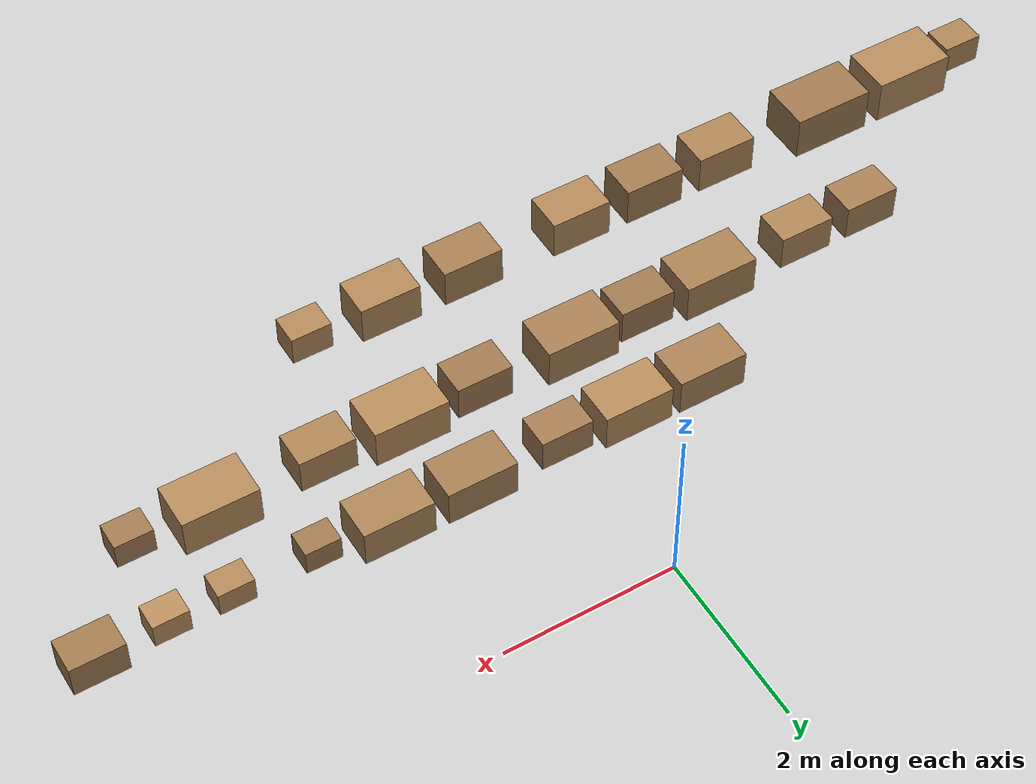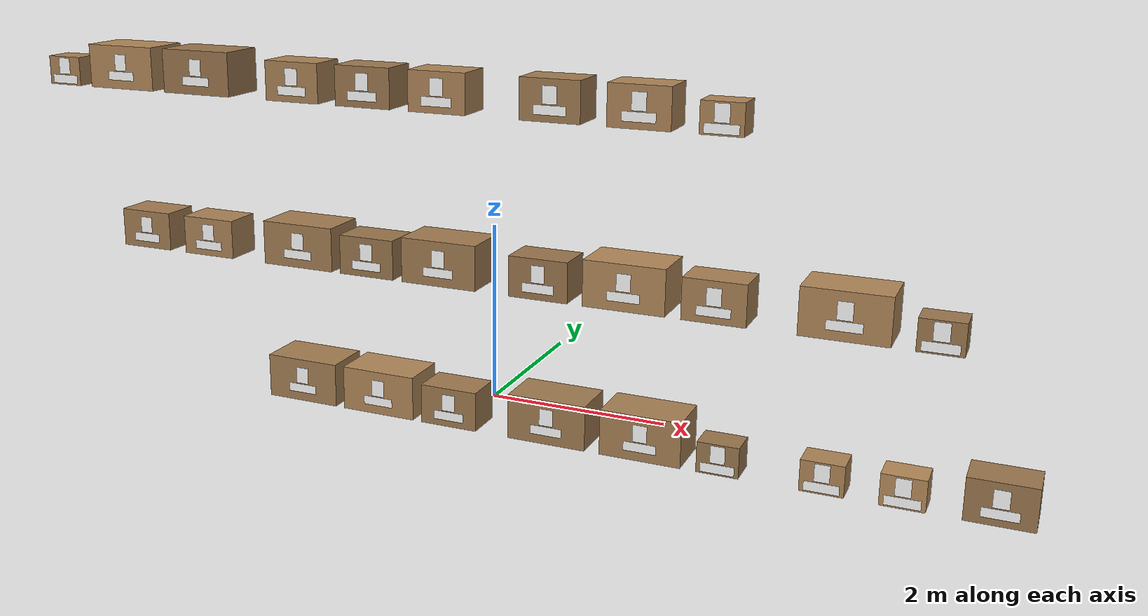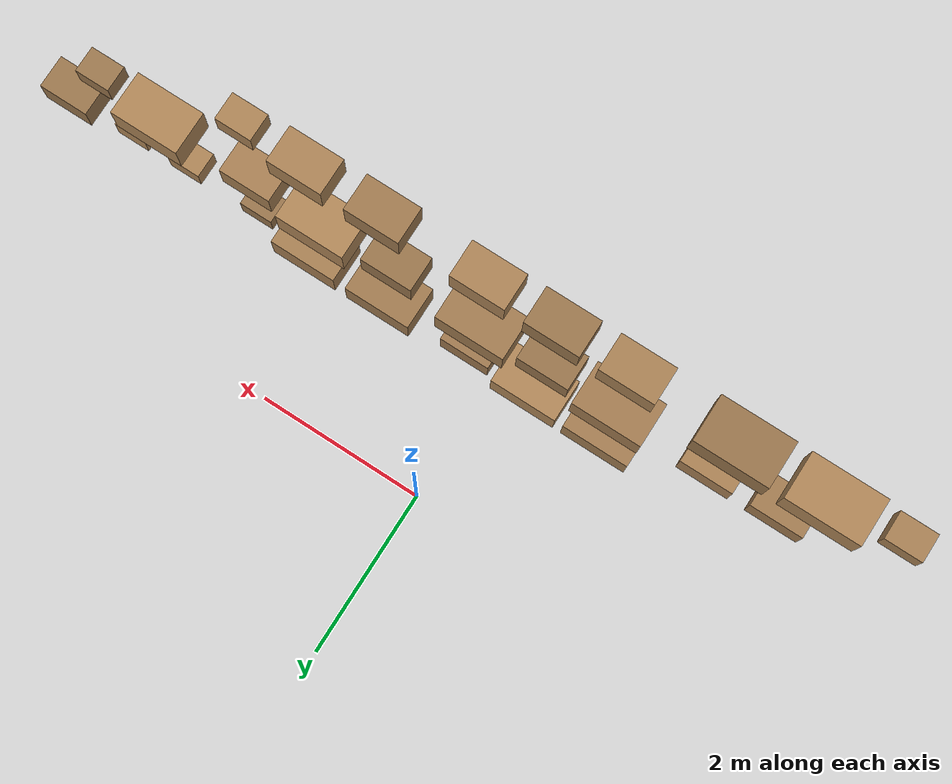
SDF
<sdf version="1.9">
 <world name="warehouse">
  <model name="inventory">
   <static>true</static>
   <link name="box_B_03_2_1">
    <visual name="body">
     <pose>-3.25 -1.68 2.05 0 0 0</pose>
     <geometry><box><size>0.6 0.4 0.4</size></box></geometry>
     <material>
      <ambient>0.319644 0.244433 0.159822 1</ambient>
      <diffuse>0.639288 0.488867 0.319644 1</diffuse>
      <specular>0.05 0.05 0.05 1</specular>
      <pbr><metal><metalness>0.0</metalness><roughness>0.9</roughness></metal></pbr>
     </material>
    </visual>
    <collision name="body_c">
     <pose>-3.25 -1.68 2.05 0 0 0</pose>
     <geometry><box><size>0.6 0.4 0.4</size></box></geometry>
    </collision>
    <visual name="label">
     <pose>-3.25 -1.884 2.1 1.5708 0 0</pose>
     <geometry>
      <mesh><uri>model://warehouse_assets/meshes/label_quad.obj</uri><scale>0.14 0.17 1</scale></mesh>
     </geometry>
     <material>
      <ambient>1 1 1 1</ambient>
      <diffuse>1 1 1 1</diffuse>
      <specular>0 0 0 1</specular>
      <pbr>
       <metal>
        <albedo_map>model://warehouse_assets/materials/textures/box_B0321.png</albedo_map>
        <metalness>0.0</metalness>
        <roughness>1.0</roughness>
       </metal>
      </pbr>
     </material>
    </visual>
    <visual name="placard">
     <pose>-3.25 -1.884 1.96 1.5708 0 0</pose>
     <geometry>
      <mesh><uri>model://warehouse_assets/meshes/label_quad.obj</uri><scale>0.32 0.09 1</scale></mesh>
     </geometry>
     <material>
      <ambient>1 1 1 1</ambient>
      <diffuse>1 1 1 1</diffuse>
      <specular>0 0 0 1</specular>
      <pbr>
       <metal>
        <albedo_map>model://warehouse_assets/materials/textures/placard_B0321.png</albedo_map>
        <metalness>0.0</metalness>
        <roughness>1.0</roughness>
       </metal>
      </pbr>
     </material>
    </visual>
   </link>
   <link name="box_B_03_2_2">
    <visual name="body">
     <pose>-2.45 -1.68 2.05 0 0 0</pose>
     <geometry><box><size>0.6 0.4 0.4</size></box></geometry>
     <material>
      <ambient>0.333896 0.255332 0.166948 1</ambient>
      <diffuse>0.667791 0.510664 0.333896 1</diffuse>
      <specular>0.05 0.05 0.05 1</specular>
      <pbr><metal><metalness>0.0</metalness><roughness>0.9</roughness></metal></pbr>
     </material>
    </visual>
    <collision name="body_c">
     <pose>-2.45 -1.68 2.05 0 0 0</pose>
     <geometry><box><size>0.6 0.4 0.4</size></box></geometry>
    </collision>
    <visual name="label">
     <pose>-2.45 -1.884 2.1 1.5708 0 0</pose>
     <geometry>
      <mesh><uri>model://warehouse_assets/meshes/label_quad.obj</uri><scale>0.14 0.17 1</scale></mesh>
     </geometry>
     <material>
      <ambient>1 1 1 1</ambient>
      <diffuse>1 1 1 1</diffuse>
      <specular>0 0 0 1</specular>
      <pbr>
       <metal>
        <albedo_map>model://warehouse_assets/materials/textures/box_B0322.png</albedo_map>
        <metalness>0.0</metalness>
        <roughness>1.0</roughness>
       </metal>
      </pbr>
     </material>
    </visual>
    <visual name="placard">
     <pose>-2.45 -1.884 1.96 1.5708 0 0</pose>
     <geometry>
      <mesh><uri>model://warehouse_assets/meshes/label_quad.obj</uri><scale>0.32 0.09 1</scale></mesh>
     </geometry>
     <material>
      <ambient>1 1 1 1</ambient>
      <diffuse>1 1 1 1</diffuse>
      <specular>0 0 0 1</specular>
      <pbr>
       <metal>
        <albedo_map>model://warehouse_assets/materials/textures/placard_B0322.png</albedo_map>
        <metalness>0.0</metalness>
        <roughness>1.0</roughness>
       </metal>
      </pbr>
     </material>
    </visual>
   </link>
   <link name="box_B_03_3_0">
    <visual name="body">
     <pose>-4.2 -1.73 3.7 0 0 0</pose>
     <geometry><box><size>0.4 0.3 0.3</size></box></geometry>
     <material>
      <ambient>0.330717 0.252901 0.165358 1</ambient>
      <diffuse>0.661434 0.505802 0.330717 1</diffuse>
      <specular>0.05 0.05 0.05 1</specular>
      <pbr><metal><metalness>0.0</metalness><roughness>0.9</roughness></metal></pbr>
     </material>
    </visual>
    <collision name="body_c">
     <pose>-4.2 -1.73 3.7 0 0 0</pose>
     <geometry><box><size>0.4 0.3 0.3</size></box></geometry>
    </collision>
    <visual name="label">
     <pose>-4.2 -1.884 3.75 1.5708 0 0</pose>
     <geometry>
      <mesh><uri>model://warehouse_assets/meshes/label_quad.obj</uri><scale>0.14 0.17 1</scale></mesh>
     </geometry>
     <material>
      <ambient>1 1 1 1</ambient>
      <diffuse>1 1 1 1</diffuse>
      <specular>0 0 0 1</specular>
      <pbr>
       <metal>
        <albedo_map>model://warehouse_assets/materials/textures/box_B0330.png</albedo_map>
        <metalness>0.0</metalness>
        <roughness>1.0</roughness>
       </metal>
      </pbr>
     </material>
    </visual>
    <visual name="placard">
     <pose>-4.2 -1.884 3.61 1.5708 0 0</pose>
     <geometry>
      <mesh><uri>model://warehouse_assets/meshes/label_quad.obj</uri><scale>0.32 0.09 1</scale></mesh>
     </geometry>
     <material>
      <ambient>1 1 1 1</ambient>
      <diffuse>1 1 1 1</diffuse>
      <specular>0 0 0 1</specular>
      <pbr>
       <metal>
        <albedo_map>model://warehouse_assets/materials/textures/placard_B0330.png</albedo_map>
        <metalness>0.0</metalness>
        <roughness>1.0</roughness>
       </metal>
      </pbr>
     </material>
    </visual>
   </link>
   <link name="box_B_03_3_1">
    <visual name="body">
     <pose>-3.45 -1.63 3.775 0 0 0</pose>
     <geometry><box><size>0.8 0.5 0.45</size></box></geometry>
     <material>
      <ambient>0.344914 0.263758 0.172457 1</ambient>
      <diffuse>0.689828 0.527515 0.344914 1</diffuse>
      <specular>0.05 0.05 0.05 1</specular>
      <pbr><metal><metalness>0.0</metalness><roughness>0.9</roughness></metal></pbr>
     </material>
    </visual>
    <collision name="body_c">
     <pose>-3.45 -1.63 3.775 0 0 0</pose>
     <geometry><box><size>0.8 0.5 0.45</size></box></geometry>
    </collision>
    <visual name="label">
     <pose>-3.45 -1.884 3.825 1.5708 0 0</pose>
     <geometry>
      <mesh><uri>model://warehouse_assets/meshes/label_quad.obj</uri><scale>0.14 0.17 1</scale></mesh>
     </geometry>
     <material>
      <ambient>1 1 1 1</ambient>
      <diffuse>1 1 1 1</diffuse>
      <specular>0 0 0 1</specular>
      <pbr>
       <metal>
        <albedo_map>model://warehouse_assets/materials/textures/box_B0331.png</albedo_map>
        <metalness>0.0</metalness>
        <roughness>1.0</roughness>
       </metal>
      </pbr>
     </material>
    </visual>
    <visual name="placard">
     <pose>-3.45 -1.884 3.685 1.5708 0 0</pose>
     <geometry>
      <mesh><uri>model://warehouse_assets/meshes/label_quad.obj</uri><scale>0.32 0.09 1</scale></mesh>
     </geometry>
     <material>
      <ambient>1 1 1 1</ambient>
      <diffuse>1 1 1 1</diffuse>
      <specular>0 0 0 1</specular>
      <pbr>
       <metal>
        <albedo_map>model://warehouse_assets/materials/textures/placard_B0331.png</albedo_map>
        <metalness>0.0</metalness>
        <roughness>1.0</roughness>
       </metal>
      </pbr>
     </material>
    </visual>
   </link>
   <link name="box_B_03_3_2">
    <visual name="body">
     <pose>-2.5 -1.63 3.775 0 0 0</pose>
     <geometry><box><size>0.8 0.5 0.45</size></box></geometry>
     <material>
      <ambient>0.301384 0.23047 0.150692 1</ambient>
      <diffuse>0.602767 0.46094 0.301384 1</diffuse>
      <specular>0.05 0.05 0.05 1</specular>
      <pbr><metal><metalness>0.0</metalness><roughness>0.9</roughness></metal></pbr>
     </material>
    </visual>
    <collision name="body_c">
     <pose>-2.5 -1.63 3.775 0 0 0</pose>
     <geometry><box><size>0.8 0.5 0.45</size></box></geometry>
    </collision>
    <visual name="label">
     <pose>-2.5 -1.884 3.825 1.5708 0 0</pose>
     <geometry>
      <mesh><uri>model://warehouse_assets/meshes/label_quad.obj</uri><scale>0.14 0.17 1</scale></mesh>
     </geometry>
     <material>
      <ambient>1 1 1 1</ambient>
      <diffuse>1 1 1 1</diffuse>
      <specular>0 0 0 1</specular>
      <pbr>
       <metal>
        <albedo_map>model://warehouse_assets/materials/textures/box_B0332.png</albedo_map>
        <metalness>0.0</metalness>
        <roughness>1.0</roughness>
       </metal>
      </pbr>
     </material>
    </visual>
    <visual name="placard">
     <pose>-2.5 -1.884 3.685 1.5708 0 0</pose>
     <geometry>
      <mesh><uri>model://warehouse_assets/meshes/label_quad.obj</uri><scale>0.32 0.09 1</scale></mesh>
     </geometry>
     <material>
      <ambient>1 1 1 1</ambient>
      <diffuse>1 1 1 1</diffuse>
      <specular>0 0 0 1</specular>
      <pbr>
       <metal>
        <albedo_map>model://warehouse_assets/materials/textures/placard_B0332.png</albedo_map>
        <metalness>0.0</metalness>
        <roughness>1.0</roughness>
       </metal>
      </pbr>
     </material>
    </visual>
   </link>
   <link name="box_B_04_1_0">
    <visual name="body">
     <pose>-1.35 -1.63 0.625 0 0 0</pose>
     <geometry><box><size>0.8 0.5 0.45</size></box></geometry>
     <material>
      <ambient>0.322226 0.246408 0.161113 1</ambient>
      <diffuse>0.644452 0.492816 0.322226 1</diffuse>
      <specular>0.05 0.05 0.05 1</specular>
      <pbr><metal><metalness>0.0</metalness><roughness>0.9</roughness></metal></pbr>
     </material>
    </visual>
    <collision name="body_c">
     <pose>-1.35 -1.63 0.625 0 0 0</pose>
     <geometry><box><size>0.8 0.5 0.45</size></box></geometry>
    </collision>
    <visual name="label">
     <pose>-1.35 -1.884 0.675 1.5708 0 0</pose>
     <geometry>
      <mesh><uri>model://warehouse_assets/meshes/label_quad.obj</uri><scale>0.14 0.17 1</scale></mesh>
     </geometry>
     <material>
      <ambient>1 1 1 1</ambient>
      <diffuse>1 1 1 1</diffuse>
      <specular>0 0 0 1</specular>
      <pbr>
       <metal>
        <albedo_map>model://warehouse_assets/materials/textures/box_B0410.png</albedo_map>
        <metalness>0.0</metalness>
        <roughness>1.0</roughness>
       </metal>
      </pbr>
     </material>
    </visual>
    <visual name="placard">
     <pose>-1.35 -1.884 0.535 1.5708 0 0</pose>
     <geometry>
      <mesh><uri>model://warehouse_assets/meshes/label_quad.obj</uri><scale>0.32 0.09 1</scale></mesh>
     </geometry>
     <material>
      <ambient>1 1 1 1</ambient>
      <diffuse>1 1 1 1</diffuse>
      <specular>0 0 0 1</specular>
      <pbr>
       <metal>
        <albedo_map>model://warehouse_assets/materials/textures/placard_B0410.png</albedo_map>
        <metalness>0.0</metalness>
        <roughness>1.0</roughness>
       </metal>
      </pbr>
     </material>
    </visual>
   </link>
   <link name="box_B_04_1_1">
    <visual name="body">
     <pose>-0.45 -1.63 0.625 0 0 0</pose>
     <geometry><box><size>0.8 0.5 0.45</size></box></geometry>
     <material>
      <ambient>0.348037 0.266146 0.174019 1</ambient>
      <diffuse>0.696074 0.532292 0.348037 1</diffuse>
      <specular>0.05 0.05 0.05 1</specular>
      <pbr><metal><metalness>0.0</metalness><roughness>0.9</roughness></metal></pbr>
     </material>
    </visual>
    <collision name="body_c">
     <pose>-0.45 -1.63 0.625 0 0 0</pose>
     <geometry><box><size>0.8 0.5 0.45</size></box></geometry>
    </collision>
    <visual name="label">
     <pose>-0.45 -1.884 0.675 1.5708 0 0</pose>
     <geometry>
      <mesh><uri>model://warehouse_assets/meshes/label_quad.obj</uri><scale>0.14 0.17 1</scale></mesh>
     </geometry>
     <material>
      <ambient>1 1 1 1</ambient>
      <diffuse>1 1 1 1</diffuse>
      <specular>0 0 0 1</specular>
      <pbr>
       <metal>
        <albedo_map>model://warehouse_assets/materials/textures/box_B0411.png</albedo_map>
        <metalness>0.0</metalness>
        <roughness>1.0</roughness>
       </metal>
      </pbr>
     </material>
    </visual>
    <visual name="placard">
     <pose>-0.45 -1.884 0.535 1.5708 0 0</pose>
     <geometry>
      <mesh><uri>model://warehouse_assets/meshes/label_quad.obj</uri><scale>0.32 0.09 1</scale></mesh>
     </geometry>
     <material>
      <ambient>1 1 1 1</ambient>
      <diffuse>1 1 1 1</diffuse>
      <specular>0 0 0 1</specular>
      <pbr>
       <metal>
        <albedo_map>model://warehouse_assets/materials/textures/placard_B0411.png</albedo_map>
        <metalness>0.0</metalness>
        <roughness>1.0</roughness>
       </metal>
      </pbr>
     </material>
    </visual>
   </link>
   <link name="box_B_04_1_2">
    <visual name="body">
     <pose>0.35 -1.68 0.6 0 0 0</pose>
     <geometry><box><size>0.6 0.4 0.4</size></box></geometry>
     <material>
      <ambient>0.313697 0.239886 0.156848 1</ambient>
      <diffuse>0.627393 0.479771 0.313697 1</diffuse>
      <specular>0.05 0.05 0.05 1</specular>
      <pbr><metal><metalness>0.0</metalness><roughness>0.9</roughness></metal></pbr>
     </material>
    </visual>
    <collision name="body_c">
     <pose>0.35 -1.68 0.6 0 0 0</pose>
     <geometry><box><size>0.6 0.4 0.4</size></box></geometry>
    </collision>
    <visual name="label">
     <pose>0.35 -1.884 0.65 1.5708 0 0</pose>
     <geometry>
      <mesh><uri>model://warehouse_assets/meshes/label_quad.obj</uri><scale>0.14 0.17 1</scale></mesh>
     </geometry>
     <material>
      <ambient>1 1 1 1</ambient>
      <diffuse>1 1 1 1</diffuse>
      <specular>0 0 0 1</specular>
      <pbr>
       <metal>
        <albedo_map>model://warehouse_assets/materials/textures/box_B0412.png</albedo_map>
        <metalness>0.0</metalness>
        <roughness>1.0</roughness>
       </metal>
      </pbr>
     </material>
    </visual>
    <visual name="placard">
     <pose>0.35 -1.884 0.51 1.5708 0 0</pose>
     <geometry>
      <mesh><uri>model://warehouse_assets/meshes/label_quad.obj</uri><scale>0.32 0.09 1</scale></mesh>
     </geometry>
     <material>
      <ambient>1 1 1 1</ambient>
      <diffuse>1 1 1 1</diffuse>
      <specular>0 0 0 1</specular>
      <pbr>
       <metal>
        <albedo_map>model://warehouse_assets/materials/textures/placard_B0412.png</albedo_map>
        <metalness>0.0</metalness>
        <roughness>1.0</roughness>
       </metal>
      </pbr>
     </material>
    </visual>
   </link>
   <link name="box_B_04_2_0">
    <visual name="body">
     <pose>-1.35 -1.63 2.075 0 0 0</pose>
     <geometry><box><size>0.8 0.5 0.45</size></box></geometry>
     <material>
      <ambient>0.319825 0.244572 0.159913 1</ambient>
      <diffuse>0.639651 0.489145 0.319825 1</diffuse>
      <specular>0.05 0.05 0.05 1</specular>
      <pbr><metal><metalness>0.0</metalness><roughness>0.9</roughness></metal></pbr>
     </material>
    </visual>
    <collision name="body_c">
     <pose>-1.35 -1.63 2.075 0 0 0</pose>
     <geometry><box><size>0.8 0.5 0.45</size></box></geometry>
    </collision>
    <visual name="label">
     <pose>-1.35 -1.884 2.125 1.5708 0 0</pose>
     <geometry>
      <mesh><uri>model://warehouse_assets/meshes/label_quad.obj</uri><scale>0.14 0.17 1</scale></mesh>
     </geometry>
     <material>
      <ambient>1 1 1 1</ambient>
      <diffuse>1 1 1 1</diffuse>
      <specular>0 0 0 1</specular>
      <pbr>
       <metal>
        <albedo_map>model://warehouse_assets/materials/textures/box_B0420.png</albedo_map>
        <metalness>0.0</metalness>
        <roughness>1.0</roughness>
       </metal>
      </pbr>
     </material>
    </visual>
    <visual name="placard">
     <pose>-1.35 -1.884 1.985 1.5708 0 0</pose>
     <geometry>
      <mesh><uri>model://warehouse_assets/meshes/label_quad.obj</uri><scale>0.32 0.09 1</scale></mesh>
     </geometry>
     <material>
      <ambient>1 1 1 1</ambient>
      <diffuse>1 1 1 1</diffuse>
      <specular>0 0 0 1</specular>
      <pbr>
       <metal>
        <albedo_map>model://warehouse_assets/materials/textures/placard_B0420.png</albedo_map>
        <metalness>0.0</metalness>
        <roughness>1.0</roughness>
       </metal>
      </pbr>
     </material>
    </visual>
   </link>
   <link name="box_B_04_2_1">
    <visual name="body">
     <pose>-0.55 -1.68 2.05 0 0 0</pose>
     <geometry><box><size>0.6 0.4 0.4</size></box></geometry>
     <material>
      <ambient>0.299528 0.229051 0.149764 1</ambient>
      <diffuse>0.599057 0.458102 0.299528 1</diffuse>
      <specular>0.05 0.05 0.05 1</specular>
      <pbr><metal><metalness>0.0</metalness><roughness>0.9</roughness></metal></pbr>
     </material>
    </visual>
    <collision name="body_c">
     <pose>-0.55 -1.68 2.05 0 0 0</pose>
     <geometry><box><size>0.6 0.4 0.4</size></box></geometry>
    </collision>
    <visual name="label">
     <pose>-0.55 -1.884 2.1 1.5708 0 0</pose>
     <geometry>
      <mesh><uri>model://warehouse_assets/meshes/label_quad.obj</uri><scale>0.14 0.17 1</scale></mesh>
     </geometry>
     <material>
      <ambient>1 1 1 1</ambient>
      <diffuse>1 1 1 1</diffuse>
      <specular>0 0 0 1</specular>
      <pbr>
       <metal>
        <albedo_map>model://warehouse_assets/materials/textures/box_B0421.png</albedo_map>
        <metalness>0.0</metalness>
        <roughness>1.0</roughness>
       </metal>
      </pbr>
     </material>
    </visual>
    <visual name="placard">
     <pose>-0.55 -1.884 1.96 1.5708 0 0</pose>
     <geometry>
      <mesh><uri>model://warehouse_assets/meshes/label_quad.obj</uri><scale>0.32 0.09 1</scale></mesh>
     </geometry>
     <material>
      <ambient>1 1 1 1</ambient>
      <diffuse>1 1 1 1</diffuse>
      <specular>0 0 0 1</specular>
      <pbr>
       <metal>
        <albedo_map>model://warehouse_assets/materials/textures/placard_B0421.png</albedo_map>
        <metalness>0.0</metalness>
        <roughness>1.0</roughness>
       </metal>
      </pbr>
     </material>
    </visual>
   </link>
   <link name="box_B_04_2_2">
    <visual name="body">
     <pose>0.25 -1.63 2.075 0 0 0</pose>
     <geometry><box><size>0.8 0.5 0.45</size></box></geometry>
     <material>
      <ambient>0.318029 0.243198 0.159014 1</ambient>
      <diffuse>0.636057 0.486397 0.318029 1</diffuse>
      <specular>0.05 0.05 0.05 1</specular>
      <pbr><metal><metalness>0.0</metalness><roughness>0.9</roughness></metal></pbr>
     </material>
    </visual>
    <collision name="body_c">
     <pose>0.25 -1.63 2.075 0 0 0</pose>
     <geometry><box><size>0.8 0.5 0.45</size></box></geometry>
    </collision>
    <visual name="label">
     <pose>0.25 -1.884 2.125 1.5708 0 0</pose>
     <geometry>
      <mesh><uri>model://warehouse_assets/meshes/label_quad.obj</uri><scale>0.14 0.17 1</scale></mesh>
     </geometry>
     <material>
      <ambient>1 1 1 1</ambient>
      <diffuse>1 1 1 1</diffuse>
      <specular>0 0 0 1</specular>
      <pbr>
       <metal>
        <albedo_map>model://warehouse_assets/materials/textures/box_B0422.png</albedo_map>
        <metalness>0.0</metalness>
        <roughness>1.0</roughness>
       </metal>
      </pbr>
     </material>
    </visual>
    <visual name="placard">
     <pose>0.25 -1.884 1.985 1.5708 0 0</pose>
     <geometry>
      <mesh><uri>model://warehouse_assets/meshes/label_quad.obj</uri><scale>0.32 0.09 1</scale></mesh>
     </geometry>
     <material>
      <ambient>1 1 1 1</ambient>
      <diffuse>1 1 1 1</diffuse>
      <specular>0 0 0 1</specular>
      <pbr>
       <metal>
        <albedo_map>model://warehouse_assets/materials/textures/placard_B0422.png</albedo_map>
        <metalness>0.0</metalness>
        <roughness>1.0</roughness>
       </metal>
      </pbr>
     </material>
    </visual>
   </link>
   <link name="box_B_04_3_0">
    <visual name="body">
     <pose>-1.35 -1.68 3.75 0 0 0</pose>
     <geometry><box><size>0.6 0.4 0.4</size></box></geometry>
     <material>
      <ambient>0.332171 0.254013 0.166085 1</ambient>
      <diffuse>0.664342 0.508026 0.332171 1</diffuse>
      <specular>0.05 0.05 0.05 1</specular>
      <pbr><metal><metalness>0.0</metalness><roughness>0.9</roughness></metal></pbr>
     </material>
    </visual>
    <collision name="body_c">
     <pose>-1.35 -1.68 3.75 0 0 0</pose>
     <geometry><box><size>0.6 0.4 0.4</size></box></geometry>
    </collision>
    <visual name="label">
     <pose>-1.35 -1.884 3.8 1.5708 0 0</pose>
     <geometry>
      <mesh><uri>model://warehouse_assets/meshes/label_quad.obj</uri><scale>0.14 0.17 1</scale></mesh>
     </geometry>
     <material>
      <ambient>1 1 1 1</ambient>
      <diffuse>1 1 1 1</diffuse>
      <specular>0 0 0 1</specular>
      <pbr>
       <metal>
        <albedo_map>model://warehouse_assets/materials/textures/box_B0430.png</albedo_map>
        <metalness>0.0</metalness>
        <roughness>1.0</roughness>
       </metal>
      </pbr>
     </material>
    </visual>
    <visual name="placard">
     <pose>-1.35 -1.884 3.66 1.5708 0 0</pose>
     <geometry>
      <mesh><uri>model://warehouse_assets/meshes/label_quad.obj</uri><scale>0.32 0.09 1</scale></mesh>
     </geometry>
     <material>
      <ambient>1 1 1 1</ambient>
      <diffuse>1 1 1 1</diffuse>
      <specular>0 0 0 1</specular>
      <pbr>
       <metal>
        <albedo_map>model://warehouse_assets/materials/textures/placard_B0430.png</albedo_map>
        <metalness>0.0</metalness>
        <roughness>1.0</roughness>
       </metal>
      </pbr>
     </material>
    </visual>
   </link>
   <link name="box_B_04_3_1">
    <visual name="body">
     <pose>-0.55 -1.68 3.75 0 0 0</pose>
     <geometry><box><size>0.6 0.4 0.4</size></box></geometry>
     <material>
      <ambient>0.305669 0.233747 0.152835 1</ambient>
      <diffuse>0.611338 0.467494 0.305669 1</diffuse>
      <specular>0.05 0.05 0.05 1</specular>
      <pbr><metal><metalness>0.0</metalness><roughness>0.9</roughness></metal></pbr>
     </material>
    </visual>
    <collision name="body_c">
     <pose>-0.55 -1.68 3.75 0 0 0</pose>
     <geometry><box><size>0.6 0.4 0.4</size></box></geometry>
    </collision>
    <visual name="label">
     <pose>-0.55 -1.884 3.8 1.5708 0 0</pose>
     <geometry>
      <mesh><uri>model://warehouse_assets/meshes/label_quad.obj</uri><scale>0.14 0.17 1</scale></mesh>
     </geometry>
     <material>
      <ambient>1 1 1 1</ambient>
      <diffuse>1 1 1 1</diffuse>
      <specular>0 0 0 1</specular>
      <pbr>
       <metal>
        <albedo_map>model://warehouse_assets/materials/textures/box_B0431.png</albedo_map>
        <metalness>0.0</metalness>
        <roughness>1.0</roughness>
       </metal>
      </pbr>
     </material>
    </visual>
    <visual name="placard">
     <pose>-0.55 -1.884 3.66 1.5708 0 0</pose>
     <geometry>
      <mesh><uri>model://warehouse_assets/meshes/label_quad.obj</uri><scale>0.32 0.09 1</scale></mesh>
     </geometry>
     <material>
      <ambient>1 1 1 1</ambient>
      <diffuse>1 1 1 1</diffuse>
      <specular>0 0 0 1</specular>
      <pbr>
       <metal>
        <albedo_map>model://warehouse_assets/materials/textures/placard_B0431.png</albedo_map>
        <metalness>0.0</metalness>
        <roughness>1.0</roughness>
       </metal>
      </pbr>
     </material>
    </visual>
   </link>
   <link name="box_B_04_3_2">
    <visual name="body">
     <pose>0.25 -1.68 3.75 0 0 0</pose>
     <geometry><box><size>0.6 0.4 0.4</size></box></geometry>
     <material>
      <ambient>0.340037 0.260028 0.170018 1</ambient>
      <diffuse>0.680073 0.520056 0.340037 1</diffuse>
      <specular>0.05 0.05 0.05 1</specular>
      <pbr><metal><metalness>0.0</metalness><roughness>0.9</roughness></metal></pbr>
     </material>
    </visual>
    <collision name="body_c">
     <pose>0.25 -1.68 3.75 0 0 0</pose>
     <geometry><box><size>0.6 0.4 0.4</size></box></geometry>
    </collision>
    <visual name="label">
     <pose>0.25 -1.884 3.8 1.5708 0 0</pose>
     <geometry>
      <mesh><uri>model://warehouse_assets/meshes/label_quad.obj</uri><scale>0.14 0.17 1</scale></mesh>
     </geometry>
     <material>
      <ambient>1 1 1 1</ambient>
      <diffuse>1 1 1 1</diffuse>
      <specular>0 0 0 1</specular>
      <pbr>
       <metal>
        <albedo_map>model://warehouse_assets/materials/textures/box_B0432.png</albedo_map>
        <metalness>0.0</metalness>
        <roughness>1.0</roughness>
       </metal>
      </pbr>
     </material>
    </visual>
    <visual name="placard">
     <pose>0.25 -1.884 3.66 1.5708 0 0</pose>
     <geometry>
      <mesh><uri>model://warehouse_assets/meshes/label_quad.obj</uri><scale>0.32 0.09 1</scale></mesh>
     </geometry>
     <material>
      <ambient>1 1 1 1</ambient>
      <diffuse>1 1 1 1</diffuse>
      <specular>0 0 0 1</specular>
      <pbr>
       <metal>
        <albedo_map>model://warehouse_assets/materials/textures/placard_B0432.png</albedo_map>
        <metalness>0.0</metalness>
        <roughness>1.0</roughness>
       </metal>
      </pbr>
     </material>
    </visual>
   </link>
   <link name="box_B_05_1_0">
    <visual name="body">
     <pose>1.4 -1.63 0.625 0 0 0</pose>
     <geometry><box><size>0.8 0.5 0.45</size></box></geometry>
     <material>
      <ambient>0.315612 0.24135 0.157806 1</ambient>
      <diffuse>0.631224 0.482701 0.315612 1</diffuse>
      <specular>0.05 0.05 0.05 1</specular>
      <pbr><metal><metalness>0.0</metalness><roughness>0.9</roughness></metal></pbr>
     </material>
    </visual>
    <collision name="body_c">
     <pose>1.4 -1.63 0.625 0 0 0</pose>
     <geometry><box><size>0.8 0.5 0.45</size></box></geometry>
    </collision>
    <visual name="label">
     <pose>1.4 -1.884 0.675 1.5708 0 0</pose>
     <geometry>
      <mesh><uri>model://warehouse_assets/meshes/label_quad.obj</uri><scale>0.14 0.17 1</scale></mesh>
     </geometry>
     <material>
      <ambient>1 1 1 1</ambient>
      <diffuse>1 1 1 1</diffuse>
      <specular>0 0 0 1</specular>
      <pbr>
       <metal>
        <albedo_map>model://warehouse_assets/materials/textures/box_B0510.png</albedo_map>
        <metalness>0.0</metalness>
        <roughness>1.0</roughness>
       </metal>
      </pbr>
     </material>
    </visual>
    <visual name="placard">
     <pose>1.4 -1.884 0.535 1.5708 0 0</pose>
     <geometry>
      <mesh><uri>model://warehouse_assets/meshes/label_quad.obj</uri><scale>0.32 0.09 1</scale></mesh>
     </geometry>
     <material>
      <ambient>1 1 1 1</ambient>
      <diffuse>1 1 1 1</diffuse>
      <specular>0 0 0 1</specular>
      <pbr>
       <metal>
        <albedo_map>model://warehouse_assets/materials/textures/placard_B0510.png</albedo_map>
        <metalness>0.0</metalness>
        <roughness>1.0</roughness>
       </metal>
      </pbr>
     </material>
    </visual>
   </link>
   <link name="box_B_05_1_1">
    <visual name="body">
     <pose>2.35 -1.63 0.625 0 0 0</pose>
     <geometry><box><size>0.8 0.5 0.45</size></box></geometry>
     <material>
      <ambient>0.329321 0.251834 0.164661 1</ambient>
      <diffuse>0.658642 0.503668 0.329321 1</diffuse>
      <specular>0.05 0.05 0.05 1</specular>
      <pbr><metal><metalness>0.0</metalness><roughness>0.9</roughness></metal></pbr>
     </material>
    </visual>
    <collision name="body_c">
     <pose>2.35 -1.63 0.625 0 0 0</pose>
     <geometry><box><size>0.8 0.5 0.45</size></box></geometry>
    </collision>
    <visual name="label">
     <pose>2.35 -1.884 0.675 1.5708 0 0</pose>
     <geometry>
      <mesh><uri>model://warehouse_assets/meshes/label_quad.obj</uri><scale>0.14 0.17 1</scale></mesh>
     </geometry>
     <material>
      <ambient>1 1 1 1</ambient>
      <diffuse>1 1 1 1</diffuse>
      <specular>0 0 0 1</specular>
      <pbr>
       <metal>
        <albedo_map>model://warehouse_assets/materials/textures/box_B0511.png</albedo_map>
        <metalness>0.0</metalness>
        <roughness>1.0</roughness>
       </metal>
      </pbr>
     </material>
    </visual>
    <visual name="placard">
     <pose>2.35 -1.884 0.535 1.5708 0 0</pose>
     <geometry>
      <mesh><uri>model://warehouse_assets/meshes/label_quad.obj</uri><scale>0.32 0.09 1</scale></mesh>
     </geometry>
     <material>
      <ambient>1 1 1 1</ambient>
      <diffuse>1 1 1 1</diffuse>
      <specular>0 0 0 1</specular>
      <pbr>
       <metal>
        <albedo_map>model://warehouse_assets/materials/textures/placard_B0511.png</albedo_map>
        <metalness>0.0</metalness>
        <roughness>1.0</roughness>
       </metal>
      </pbr>
     </material>
    </visual>
   </link>
   <link name="box_B_05_1_2">
    <visual name="body">
     <pose>3.1 -1.73 0.55 0 0 0</pose>
     <geometry><box><size>0.4 0.3 0.3</size></box></geometry>
     <material>
      <ambient>0.303493 0.232083 0.151747 1</ambient>
      <diffuse>0.606987 0.464166 0.303493 1</diffuse>
      <specular>0.05 0.05 0.05 1</specular>
      <pbr><metal><metalness>0.0</metalness><roughness>0.9</roughness></metal></pbr>
     </material>
    </visual>
    <collision name="body_c">
     <pose>3.1 -1.73 0.55 0 0 0</pose>
     <geometry><box><size>0.4 0.3 0.3</size></box></geometry>
    </collision>
    <visual name="label">
     <pose>3.1 -1.884 0.6 1.5708 0 0</pose>
     <geometry>
      <mesh><uri>model://warehouse_assets/meshes/label_quad.obj</uri><scale>0.14 0.17 1</scale></mesh>
     </geometry>
     <material>
      <ambient>1 1 1 1</ambient>
      <diffuse>1 1 1 1</diffuse>
      <specular>0 0 0 1</specular>
      <pbr>
       <metal>
        <albedo_map>model://warehouse_assets/materials/textures/box_B0512.png</albedo_map>
        <metalness>0.0</metalness>
        <roughness>1.0</roughness>
       </metal>
      </pbr>
     </material>
    </visual>
    <visual name="placard">
     <pose>3.1 -1.884 0.46 1.5708 0 0</pose>
     <geometry>
      <mesh><uri>model://warehouse_assets/meshes/label_quad.obj</uri><scale>0.32 0.09 1</scale></mesh>
     </geometry>
     <material>
      <ambient>1 1 1 1</ambient>
      <diffuse>1 1 1 1</diffuse>
      <specular>0 0 0 1</specular>
      <pbr>
       <metal>
        <albedo_map>model://warehouse_assets/materials/textures/placard_B0512.png</albedo_map>
        <metalness>0.0</metalness>
        <roughness>1.0</roughness>
       </metal>
      </pbr>
     </material>
    </visual>
   </link>
   <link name="box_B_05_2_0">
    <visual name="body">
     <pose>1.3 -1.68 2.05 0 0 0</pose>
     <geometry><box><size>0.6 0.4 0.4</size></box></geometry>
     <material>
      <ambient>0.302339 0.2312 0.151169 1</ambient>
      <diffuse>0.604678 0.462401 0.302339 1</diffuse>
      <specular>0.05 0.05 0.05 1</specular>
      <pbr><metal><metalness>0.0</metalness><roughness>0.9</roughness></metal></pbr>
     </material>
    </visual>
    <collision name="body_c">
     <pose>1.3 -1.68 2.05 0 0 0</pose>
     <geometry><box><size>0.6 0.4 0.4</size></box></geometry>
    </collision>
    <visual name="label">
     <pose>1.3 -1.884 2.1 1.5708 0 0</pose>
     <geometry>
      <mesh><uri>model://warehouse_assets/meshes/label_quad.obj</uri><scale>0.14 0.17 1</scale></mesh>
     </geometry>
     <material>
      <ambient>1 1 1 1</ambient>
      <diffuse>1 1 1 1</diffuse>
      <specular>0 0 0 1</specular>
      <pbr>
       <metal>
        <albedo_map>model://warehouse_assets/materials/textures/box_B0520.png</albedo_map>
        <metalness>0.0</metalness>
        <roughness>1.0</roughness>
       </metal>
      </pbr>
     </material>
    </visual>
    <visual name="placard">
     <pose>1.3 -1.884 1.96 1.5708 0 0</pose>
     <geometry>
      <mesh><uri>model://warehouse_assets/meshes/label_quad.obj</uri><scale>0.32 0.09 1</scale></mesh>
     </geometry>
     <material>
      <ambient>1 1 1 1</ambient>
      <diffuse>1 1 1 1</diffuse>
      <specular>0 0 0 1</specular>
      <pbr>
       <metal>
        <albedo_map>model://warehouse_assets/materials/textures/placard_B0520.png</albedo_map>
        <metalness>0.0</metalness>
        <roughness>1.0</roughness>
       </metal>
      </pbr>
     </material>
    </visual>
   </link>
   <link name="box_B_05_2_1">
    <visual name="body">
     <pose>2.15 -1.63 2.075 0 0 0</pose>
     <geometry><box><size>0.8 0.5 0.45</size></box></geometry>
     <material>
      <ambient>0.349949 0.267608 0.174974 1</ambient>
      <diffuse>0.699897 0.535216 0.349949 1</diffuse>
      <specular>0.05 0.05 0.05 1</specular>
      <pbr><metal><metalness>0.0</metalness><roughness>0.9</roughness></metal></pbr>
     </material>
    </visual>
    <collision name="body_c">
     <pose>2.15 -1.63 2.075 0 0 0</pose>
     <geometry><box><size>0.8 0.5 0.45</size></box></geometry>
    </collision>
    <visual name="label">
     <pose>2.15 -1.884 2.125 1.5708 0 0</pose>
     <geometry>
      <mesh><uri>model://warehouse_assets/meshes/label_quad.obj</uri><scale>0.14 0.17 1</scale></mesh>
     </geometry>
     <material>
      <ambient>1 1 1 1</ambient>
      <diffuse>1 1 1 1</diffuse>
      <specular>0 0 0 1</specular>
      <pbr>
       <metal>
        <albedo_map>model://warehouse_assets/materials/textures/box_B0521.png</albedo_map>
        <metalness>0.0</metalness>
        <roughness>1.0</roughness>
       </metal>
      </pbr>
     </material>
    </visual>
    <visual name="placard">
     <pose>2.15 -1.884 1.985 1.5708 0 0</pose>
     <geometry>
      <mesh><uri>model://warehouse_assets/meshes/label_quad.obj</uri><scale>0.32 0.09 1</scale></mesh>
     </geometry>
     <material>
      <ambient>1 1 1 1</ambient>
      <diffuse>1 1 1 1</diffuse>
      <specular>0 0 0 1</specular>
      <pbr>
       <metal>
        <albedo_map>model://warehouse_assets/materials/textures/placard_B0521.png</albedo_map>
        <metalness>0.0</metalness>
        <roughness>1.0</roughness>
       </metal>
      </pbr>
     </material>
    </visual>
   </link>
   <link name="box_B_05_2_2">
    <visual name="body">
     <pose>3 -1.68 2.05 0 0 0</pose>
     <geometry><box><size>0.6 0.4 0.4</size></box></geometry>
     <material>
      <ambient>0.331663 0.253624 0.165831 1</ambient>
      <diffuse>0.663325 0.507249 0.331663 1</diffuse>
      <specular>0.05 0.05 0.05 1</specular>
      <pbr><metal><metalness>0.0</metalness><roughness>0.9</roughness></metal></pbr>
     </material>
    </visual>
    <collision name="body_c">
     <pose>3 -1.68 2.05 0 0 0</pose>
     <geometry><box><size>0.6 0.4 0.4</size></box></geometry>
    </collision>
    <visual name="label">
     <pose>3 -1.884 2.1 1.5708 0 0</pose>
     <geometry>
      <mesh><uri>model://warehouse_assets/meshes/label_quad.obj</uri><scale>0.14 0.17 1</scale></mesh>
     </geometry>
     <material>
      <ambient>1 1 1 1</ambient>
      <diffuse>1 1 1 1</diffuse>
      <specular>0 0 0 1</specular>
      <pbr>
       <metal>
        <albedo_map>model://warehouse_assets/materials/textures/box_B0522.png</albedo_map>
        <metalness>0.0</metalness>
        <roughness>1.0</roughness>
       </metal>
      </pbr>
     </material>
    </visual>
    <visual name="placard">
     <pose>3 -1.884 1.96 1.5708 0 0</pose>
     <geometry>
      <mesh><uri>model://warehouse_assets/meshes/label_quad.obj</uri><scale>0.32 0.09 1</scale></mesh>
     </geometry>
     <material>
      <ambient>1 1 1 1</ambient>
      <diffuse>1 1 1 1</diffuse>
      <specular>0 0 0 1</specular>
      <pbr>
       <metal>
        <albedo_map>model://warehouse_assets/materials/textures/placard_B0522.png</albedo_map>
        <metalness>0.0</metalness>
        <roughness>1.0</roughness>
       </metal>
      </pbr>
     </material>
    </visual>
   </link>
   <link name="box_B_05_3_0">
    <visual name="body">
     <pose>1.4 -1.68 3.75 0 0 0</pose>
     <geometry><box><size>0.6 0.4 0.4</size></box></geometry>
     <material>
      <ambient>0.315938 0.2416 0.157969 1</ambient>
      <diffuse>0.631876 0.483199 0.315938 1</diffuse>
      <specular>0.05 0.05 0.05 1</specular>
      <pbr><metal><metalness>0.0</metalness><roughness>0.9</roughness></metal></pbr>
     </material>
    </visual>
    <collision name="body_c">
     <pose>1.4 -1.68 3.75 0 0 0</pose>
     <geometry><box><size>0.6 0.4 0.4</size></box></geometry>
    </collision>
    <visual name="label">
     <pose>1.4 -1.884 3.8 1.5708 0 0</pose>
     <geometry>
      <mesh><uri>model://warehouse_assets/meshes/label_quad.obj</uri><scale>0.14 0.17 1</scale></mesh>
     </geometry>
     <material>
      <ambient>1 1 1 1</ambient>
      <diffuse>1 1 1 1</diffuse>
      <specular>0 0 0 1</specular>
      <pbr>
       <metal>
        <albedo_map>model://warehouse_assets/materials/textures/box_B0530.png</albedo_map>
        <metalness>0.0</metalness>
        <roughness>1.0</roughness>
       </metal>
      </pbr>
     </material>
    </visual>
    <visual name="placard">
     <pose>1.4 -1.884 3.66 1.5708 0 0</pose>
     <geometry>
      <mesh><uri>model://warehouse_assets/meshes/label_quad.obj</uri><scale>0.32 0.09 1</scale></mesh>
     </geometry>
     <material>
      <ambient>1 1 1 1</ambient>
      <diffuse>1 1 1 1</diffuse>
      <specular>0 0 0 1</specular>
      <pbr>
       <metal>
        <albedo_map>model://warehouse_assets/materials/textures/placard_B0530.png</albedo_map>
        <metalness>0.0</metalness>
        <roughness>1.0</roughness>
       </metal>
      </pbr>
     </material>
    </visual>
   </link>
   <link name="box_B_05_3_1">
    <visual name="body">
     <pose>2.25 -1.68 3.75 0 0 0</pose>
     <geometry><box><size>0.6 0.4 0.4</size></box></geometry>
     <material>
      <ambient>0.339863 0.259895 0.169931 1</ambient>
      <diffuse>0.679726 0.51979 0.339863 1</diffuse>
      <specular>0.05 0.05 0.05 1</specular>
      <pbr><metal><metalness>0.0</metalness><roughness>0.9</roughness></metal></pbr>
     </material>
    </visual>
    <collision name="body_c">
     <pose>2.25 -1.68 3.75 0 0 0</pose>
     <geometry><box><size>0.6 0.4 0.4</size></box></geometry>
    </collision>
    <visual name="label">
     <pose>2.25 -1.884 3.8 1.5708 0 0</pose>
     <geometry>
      <mesh><uri>model://warehouse_assets/meshes/label_quad.obj</uri><scale>0.14 0.17 1</scale></mesh>
     </geometry>
     <material>
      <ambient>1 1 1 1</ambient>
      <diffuse>1 1 1 1</diffuse>
      <specular>0 0 0 1</specular>
      <pbr>
       <metal>
        <albedo_map>model://warehouse_assets/materials/textures/box_B0531.png</albedo_map>
        <metalness>0.0</metalness>
        <roughness>1.0</roughness>
       </metal>
      </pbr>
     </material>
    </visual>
    <visual name="placard">
     <pose>2.25 -1.884 3.66 1.5708 0 0</pose>
     <geometry>
      <mesh><uri>model://warehouse_assets/meshes/label_quad.obj</uri><scale>0.32 0.09 1</scale></mesh>
     </geometry>
     <material>
      <ambient>1 1 1 1</ambient>
      <diffuse>1 1 1 1</diffuse>
      <specular>0 0 0 1</specular>
      <pbr>
       <metal>
        <albedo_map>model://warehouse_assets/materials/textures/placard_B0531.png</albedo_map>
        <metalness>0.0</metalness>
        <roughness>1.0</roughness>
       </metal>
      </pbr>
     </material>
    </visual>
   </link>
   <link name="box_B_05_3_2">
    <visual name="body">
     <pose>3 -1.73 3.7 0 0 0</pose>
     <geometry><box><size>0.4 0.3 0.3</size></box></geometry>
     <material>
      <ambient>0.341141 0.260872 0.17057 1</ambient>
      <diffuse>0.682282 0.521745 0.341141 1</diffuse>
      <specular>0.05 0.05 0.05 1</specular>
      <pbr><metal><metalness>0.0</metalness><roughness>0.9</roughness></metal></pbr>
     </material>
    </visual>
    <collision name="body_c">
     <pose>3 -1.73 3.7 0 0 0</pose>
     <geometry><box><size>0.4 0.3 0.3</size></box></geometry>
    </collision>
    <visual name="label">
     <pose>3 -1.884 3.75 1.5708 0 0</pose>
     <geometry>
      <mesh><uri>model://warehouse_assets/meshes/label_quad.obj</uri><scale>0.14 0.17 1</scale></mesh>
     </geometry>
     <material>
      <ambient>1 1 1 1</ambient>
      <diffuse>1 1 1 1</diffuse>
      <specular>0 0 0 1</specular>
      <pbr>
       <metal>
        <albedo_map>model://warehouse_assets/materials/textures/box_B0532.png</albedo_map>
        <metalness>0.0</metalness>
        <roughness>1.0</roughness>
       </metal>
      </pbr>
     </material>
    </visual>
    <visual name="placard">
     <pose>3 -1.884 3.61 1.5708 0 0</pose>
     <geometry>
      <mesh><uri>model://warehouse_assets/meshes/label_quad.obj</uri><scale>0.32 0.09 1</scale></mesh>
     </geometry>
     <material>
      <ambient>1 1 1 1</ambient>
      <diffuse>1 1 1 1</diffuse>
      <specular>0 0 0 1</specular>
      <pbr>
       <metal>
        <albedo_map>model://warehouse_assets/materials/textures/placard_B0532.png</albedo_map>
        <metalness>0.0</metalness>
        <roughness>1.0</roughness>
       </metal>
      </pbr>
     </material>
    </visual>
   </link>
   <link name="box_B_06_1_0">
    <visual name="body">
     <pose>4.05 -1.73 0.55 0 0 0</pose>
     <geometry><box><size>0.4 0.3 0.3</size></box></geometry>
     <material>
      <ambient>0.341583 0.26121 0.170791 1</ambient>
      <diffuse>0.683165 0.522421 0.341583 1</diffuse>
      <specular>0.05 0.05 0.05 1</specular>
      <pbr><metal><metalness>0.0</metalness><roughness>0.9</roughness></metal></pbr>
     </material>
    </visual>
    <collision name="body_c">
     <pose>4.05 -1.73 0.55 0 0 0</pose>
     <geometry><box><size>0.4 0.3 0.3</size></box></geometry>
    </collision>
    <visual name="label">
     <pose>4.05 -1.884 0.6 1.5708 0 0</pose>
     <geometry>
      <mesh><uri>model://warehouse_assets/meshes/label_quad.obj</uri><scale>0.14 0.17 1</scale></mesh>
     </geometry>
     <material>
      <ambient>1 1 1 1</ambient>
      <diffuse>1 1 1 1</diffuse>
      <specular>0 0 0 1</specular>
      <pbr>
       <metal>
        <albedo_map>model://warehouse_assets/materials/textures/box_B0610.png</albedo_map>
        <metalness>0.0</metalness>
        <roughness>1.0</roughness>
       </metal>
      </pbr>
     </material>
    </visual>
    <visual name="placard">
     <pose>4.05 -1.884 0.46 1.5708 0 0</pose>
     <geometry>
      <mesh><uri>model://warehouse_assets/meshes/label_quad.obj</uri><scale>0.32 0.09 1</scale></mesh>
     </geometry>
     <material>
      <ambient>1 1 1 1</ambient>
      <diffuse>1 1 1 1</diffuse>
      <specular>0 0 0 1</specular>
      <pbr>
       <metal>
        <albedo_map>model://warehouse_assets/materials/textures/placard_B0610.png</albedo_map>
        <metalness>0.0</metalness>
        <roughness>1.0</roughness>
       </metal>
      </pbr>
     </material>
    </visual>
   </link>
   <link name="box_B_06_1_1">
    <visual name="body">
     <pose>4.75 -1.73 0.55 0 0 0</pose>
     <geometry><box><size>0.4 0.3 0.3</size></box></geometry>
     <material>
      <ambient>0.356525 0.272637 0.178263 1</ambient>
      <diffuse>0.71305 0.545274 0.356525 1</diffuse>
      <specular>0.05 0.05 0.05 1</specular>
      <pbr><metal><metalness>0.0</metalness><roughness>0.9</roughness></metal></pbr>
     </material>
    </visual>
    <collision name="body_c">
     <pose>4.75 -1.73 0.55 0 0 0</pose>
     <geometry><box><size>0.4 0.3 0.3</size></box></geometry>
    </collision>
    <visual name="label">
     <pose>4.75 -1.884 0.6 1.5708 0 0</pose>
     <geometry>
      <mesh><uri>model://warehouse_assets/meshes/label_quad.obj</uri><scale>0.14 0.17 1</scale></mesh>
     </geometry>
     <material>
      <ambient>1 1 1 1</ambient>
      <diffuse>1 1 1 1</diffuse>
      <specular>0 0 0 1</specular>
      <pbr>
       <metal>
        <albedo_map>model://warehouse_assets/materials/textures/box_B0611.png</albedo_map>
        <metalness>0.0</metalness>
        <roughness>1.0</roughness>
       </metal>
      </pbr>
     </material>
    </visual>
    <visual name="placard">
     <pose>4.75 -1.884 0.46 1.5708 0 0</pose>
     <geometry>
      <mesh><uri>model://warehouse_assets/meshes/label_quad.obj</uri><scale>0.32 0.09 1</scale></mesh>
     </geometry>
     <material>
      <ambient>1 1 1 1</ambient>
      <diffuse>1 1 1 1</diffuse>
      <specular>0 0 0 1</specular>
      <pbr>
       <metal>
        <albedo_map>model://warehouse_assets/materials/textures/placard_B0611.png</albedo_map>
        <metalness>0.0</metalness>
        <roughness>1.0</roughness>
       </metal>
      </pbr>
     </material>
    </visual>
   </link>
   <link name="box_B_06_1_2">
    <visual name="body">
     <pose>5.55 -1.68 0.6 0 0 0</pose>
     <geometry><box><size>0.6 0.4 0.4</size></box></geometry>
     <material>
      <ambient>0.305844 0.233881 0.152922 1</ambient>
      <diffuse>0.611688 0.467762 0.305844 1</diffuse>
      <specular>0.05 0.05 0.05 1</specular>
      <pbr><metal><metalness>0.0</metalness><roughness>0.9</roughness></metal></pbr>
     </material>
    </visual>
    <collision name="body_c">
     <pose>5.55 -1.68 0.6 0 0 0</pose>
     <geometry><box><size>0.6 0.4 0.4</size></box></geometry>
    </collision>
    <visual name="label">
     <pose>5.55 -1.884 0.65 1.5708 0 0</pose>
     <geometry>
      <mesh><uri>model://warehouse_assets/meshes/label_quad.obj</uri><scale>0.14 0.17 1</scale></mesh>
     </geometry>
     <material>
      <ambient>1 1 1 1</ambient>
      <diffuse>1 1 1 1</diffuse>
      <specular>0 0 0 1</specular>
      <pbr>
       <metal>
        <albedo_map>model://warehouse_assets/materials/textures/box_B0612.png</albedo_map>
        <metalness>0.0</metalness>
        <roughness>1.0</roughness>
       </metal>
      </pbr>
     </material>
    </visual>
    <visual name="placard">
     <pose>5.55 -1.884 0.51 1.5708 0 0</pose>
     <geometry>
      <mesh><uri>model://warehouse_assets/meshes/label_quad.obj</uri><scale>0.32 0.09 1</scale></mesh>
     </geometry>
     <material>
      <ambient>1 1 1 1</ambient>
      <diffuse>1 1 1 1</diffuse>
      <specular>0 0 0 1</specular>
      <pbr>
       <metal>
        <albedo_map>model://warehouse_assets/materials/textures/placard_B0612.png</albedo_map>
        <metalness>0.0</metalness>
        <roughness>1.0</roughness>
       </metal>
      </pbr>
     </material>
    </visual>
   </link>
   <link name="box_B_06_2_0">
    <visual name="body">
     <pose>4.15 -1.63 2.075 0 0 0</pose>
     <geometry><box><size>0.8 0.5 0.45</size></box></geometry>
     <material>
      <ambient>0.347926 0.266061 0.173963 1</ambient>
      <diffuse>0.695852 0.532122 0.347926 1</diffuse>
      <specular>0.05 0.05 0.05 1</specular>
      <pbr><metal><metalness>0.0</metalness><roughness>0.9</roughness></metal></pbr>
     </material>
    </visual>
    <collision name="body_c">
     <pose>4.15 -1.63 2.075 0 0 0</pose>
     <geometry><box><size>0.8 0.5 0.45</size></box></geometry>
    </collision>
    <visual name="label">
     <pose>4.15 -1.884 2.125 1.5708 0 0</pose>
     <geometry>
      <mesh><uri>model://warehouse_assets/meshes/label_quad.obj</uri><scale>0.14 0.17 1</scale></mesh>
     </geometry>
     <material>
      <ambient>1 1 1 1</ambient>
      <diffuse>1 1 1 1</diffuse>
      <specular>0 0 0 1</specular>
      <pbr>
       <metal>
        <albedo_map>model://warehouse_assets/materials/textures/box_B0620.png</albedo_map>
        <metalness>0.0</metalness>
        <roughness>1.0</roughness>
       </metal>
      </pbr>
     </material>
    </visual>
    <visual name="placard">
     <pose>4.15 -1.884 1.985 1.5708 0 0</pose>
     <geometry>
      <mesh><uri>model://warehouse_assets/meshes/label_quad.obj</uri><scale>0.32 0.09 1</scale></mesh>
     </geometry>
     <material>
      <ambient>1 1 1 1</ambient>
      <diffuse>1 1 1 1</diffuse>
      <specular>0 0 0 1</specular>
      <pbr>
       <metal>
        <albedo_map>model://warehouse_assets/materials/textures/placard_B0620.png</albedo_map>
        <metalness>0.0</metalness>
        <roughness>1.0</roughness>
       </metal>
      </pbr>
     </material>
    </visual>
   </link>
   <link name="box_B_06_2_1">
    <visual name="body">
     <pose>4.95 -1.73 2 0 0 0</pose>
     <geometry><box><size>0.4 0.3 0.3</size></box></geometry>
     <material>
      <ambient>0.308161 0.235653 0.154081 1</ambient>
      <diffuse>0.616323 0.471305 0.308161 1</diffuse>
      <specular>0.05 0.05 0.05 1</specular>
      <pbr><metal><metalness>0.0</metalness><roughness>0.9</roughness></metal></pbr>
     </material>
    </visual>
    <collision name="body_c">
     <pose>4.95 -1.73 2 0 0 0</pose>
     <geometry><box><size>0.4 0.3 0.3</size></box></geometry>
    </collision>
    <visual name="label">
     <pose>4.95 -1.884 2.05 1.5708 0 0</pose>
     <geometry>
      <mesh><uri>model://warehouse_assets/meshes/label_quad.obj</uri><scale>0.14 0.17 1</scale></mesh>
     </geometry>
     <material>
      <ambient>1 1 1 1</ambient>
      <diffuse>1 1 1 1</diffuse>
      <specular>0 0 0 1</specular>
      <pbr>
       <metal>
        <albedo_map>model://warehouse_assets/materials/textures/box_B0621.png</albedo_map>
        <metalness>0.0</metalness>
        <roughness>1.0</roughness>
       </metal>
      </pbr>
     </material>
    </visual>
    <visual name="placard">
     <pose>4.95 -1.884 1.91 1.5708 0 0</pose>
     <geometry>
      <mesh><uri>model://warehouse_assets/meshes/label_quad.obj</uri><scale>0.32 0.09 1</scale></mesh>
     </geometry>
     <material>
      <ambient>1 1 1 1</ambient>
      <diffuse>1 1 1 1</diffuse>
      <specular>0 0 0 1</specular>
      <pbr>
       <metal>
        <albedo_map>model://warehouse_assets/materials/textures/placard_B0621.png</albedo_map>
        <metalness>0.0</metalness>
        <roughness>1.0</roughness>
       </metal>
      </pbr>
     </material>
    </visual>
   </link>
  </model>
 </world>
</sdf>
